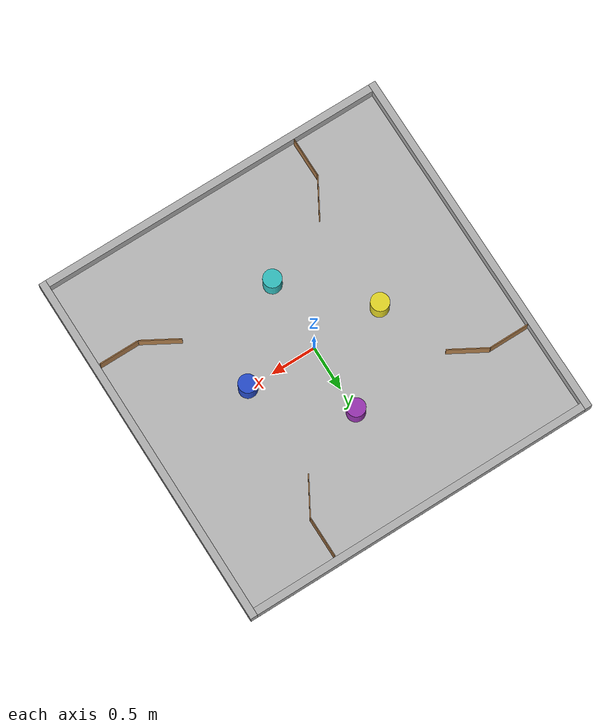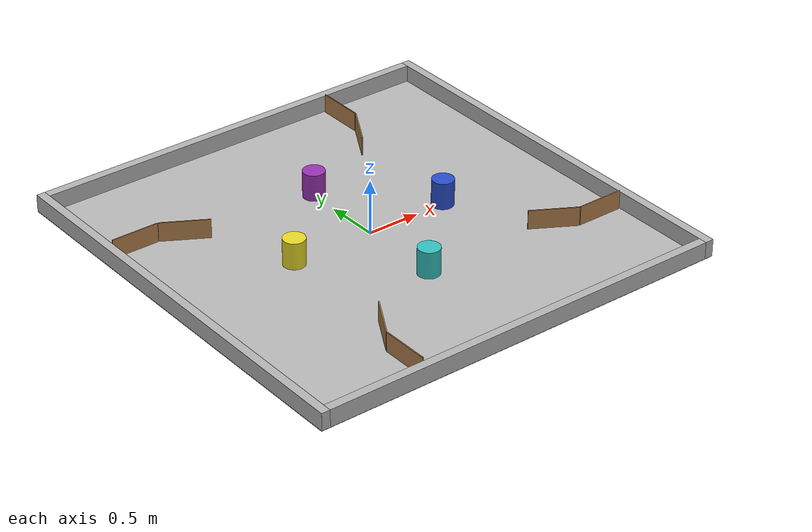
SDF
<?xml version="1.0"?>
<sdf version="1.6">
  <world name="default">

    <include>
      <uri>model://sun</uri>
    </include>

    <scene>
      <shadows>false</shadows>
    </scene>

    <gui fullscreen='0'>
      <camera name='user_camera'>
        <pose frame=''>3.8 -2.5 4.4 0.0 0.85 2.6</pose>
        <view_controller>orbit</view_controller>
        <projection_type>perspective</projection_type>
      </camera>
    </gui>

    <physics type="ode">
      <real_time_update_rate>1000.0</real_time_update_rate>
      <max_step_size>0.001</max_step_size>
      <real_time_factor>1</real_time_factor>
      <ode>
        <solver>
          <type>quick</type>
          <iters>150</iters>
          <precon_iters>0</precon_iters>
          <sor>1.400000</sor>
          <use_dynamic_moi_rescaling>1</use_dynamic_moi_rescaling>
        </solver>
        <constraints>
          <cfm>0.00001</cfm>
          <erp>0.2</erp>
          <contact_max_correcting_vel>2000.000000</contact_max_correcting_vel>
          <contact_surface_layer>0.01000</contact_surface_layer>
        </constraints>
      </ode>
    </physics>

    <include>
      <uri>model://cr5_arena_walls</uri>
    </include>

    <include>
      <uri>model://acs6121</uri>
    </include>

  </world>
</sdf>

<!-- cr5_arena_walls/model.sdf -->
<sdf version='1.6'>
  <model name='cr5_arena_walls'>
    <static>true</static>
    <pose frame=''>0 0 0.08 0 0 0</pose>

    <link name='Right_Wall'>
      <pose frame=''>0 1.96 0 0 0 0</pose>
      <collision name='Right_Wall_Collision'>
        <geometry>
          <box>
            <size>3.84 0.08 0.16</size>
          </box>
        </geometry>
      </collision>
      <visual name='Right_Wall_Visual'>
        <geometry>
          <box>
            <size>3.84 0.08 0.16</size>
          </box>
        </geometry>
        <material>
          <!-- Light Grey -->
          <diffuse>0.7 0.7 0.7 1</diffuse>
          <pbr>
            <metal>
              <metalness>0.0</metalness>
              <roughness>0.9</roughness>
            </metal>
          </pbr>
        </material>
      </visual>
    </link>

    <link name='Back_Wall'>
      <pose frame=''>-1.96 0 0 0 0 0</pose>
      <collision name='Back_Wall_Collision'>
        <geometry>
          <box>
            <size>0.08 4.00 0.16</size>
          </box>
        </geometry>
      </collision>
      <visual name='Back_Wall_Visual'>
        <geometry>
          <box>
            <size>0.08 4.00 0.16</size>
          </box>
        </geometry>
        <material>
          <!-- Light Grey -->
          <diffuse>0.7 0.7 0.7 1</diffuse>
          <pbr>
            <metal>
              <metalness>0.0</metalness>
              <roughness>0.9</roughness>
            </metal>
          </pbr>
        </material>
      </visual>
    </link>

    <link name='Left_Wall'>
      <pose frame=''>0 -1.96 0 0 0 0</pose>
      <collision name='Left_Wall_Collision'>
        <geometry>
          <box>
            <size>3.84 0.08 0.16</size>
          </box>
        </geometry>
      </collision>
      <visual name='Left_Wall_Visual'>
        <geometry>
          <box>
            <size>3.84 0.08 0.16</size>
          </box>
        </geometry>
        <material>
          <!-- Light Grey -->
          <diffuse>0.7 0.7 0.7 1</diffuse>
          <pbr>
            <metal>
              <metalness>0.0</metalness>
              <roughness>0.9</roughness>
            </metal>
          </pbr>
        </material>
      </visual>
    </link>

    <link name='Front_Wall'>
      <pose frame=''>1.96 0 0 0 0 0</pose>
      <collision name='Front_Wall_Collision'>
        <geometry>
          <box>
            <size>0.08 4.00 0.16</size>
          </box>
        </geometry>
      </collision>
      <visual name='Front_Wall_Visual'>
        <geometry>
          <box>
            <size>0.08 4.00 0.16</size>
          </box>
        </geometry>
        <material>
          <!-- Light Grey -->
          <diffuse>0.7 0.7 0.7 1</diffuse>
          <pbr>
            <metal>
              <metalness>0.0</metalness>
              <roughness>0.9</roughness>
            </metal>
          </pbr>
        </material>
      </visual>
    </link>

  </model>
</sdf>

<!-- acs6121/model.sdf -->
<sdf version="1.4">
<model name="acs6121">
  <static>true</static>
    <link name="floor">
      <collision name="collision">
        <geometry>
          <plane>
            <normal>0 0 1</normal>
            <size>4.0 4.0</size>
          </plane>
        </geometry>
        <surface>
          <friction>
            <ode>
              <mu>100</mu>
              <mu2>50</mu2>
            </ode>
          </friction>
        </surface>
      </collision>
      <visual name="visual">
        <cast_shadows>false</cast_shadows>
        <geometry>
          <plane>
            <normal>0 0 1</normal>
            <size>4.0 4.0</size>
          </plane>
        </geometry>
        <material>
          <script>
            <uri>model://acs6121/materials/scripts</uri>
            <uri>model://acs6121/materials/textures</uri>
            <name>acs6121Floor/Image</name>
          </script>
        </material>
      </visual>
    </link>
    <link name='YEL'>
      <pose frame=''>-0.78 0 0.125 0 0 0</pose>
      <collision name='coll'>
        <geometry>
          <cylinder>
            <radius>0.1</radius>
            <length>0.25</length>
          </cylinder>
        </geometry>
        <max_contacts>10</max_contacts>
        <surface>
          <bounce/>
          <friction>
            <ode/>
          </friction>
          <contact>
            <ode/>
          </contact>
        </surface>
      </collision>
      <visual name='vis'>
        <geometry>
          <cylinder>
            <radius>0.1</radius>
            <length>0.25</length>
          </cylinder>
        </geometry>
        <material>
          <script>
            <uri>file://media/materials/scripts/gazebo.material</uri>
            <name>Gazebo/Yellow</name>
          </script>
        </material>
      </visual>
    </link>
    <link name='PRP'>
      <pose frame=''>0 0.78 0.125 0 0 0</pose>
      <collision name='coll'>
        <geometry>
          <cylinder>
            <radius>0.1</radius>
            <length>0.25</length>
          </cylinder>
        </geometry>
        <max_contacts>10</max_contacts>
        <surface>
          <bounce/>
          <friction>
            <ode/>
          </friction>
          <contact>
            <ode/>
          </contact>
        </surface>
      </collision>
      <visual name='vis'>
        <geometry>
          <cylinder>
            <radius>0.1</radius>
            <length>0.25</length>
          </cylinder>
        </geometry>
        <material>
          <script>
            <uri>file://media/materials/scripts/gazebo.material</uri>
            <name>Gazebo/Purple</name>
          </script>
        </material>
      </visual>
    </link>
    <link name='TRQ'>
      <pose frame=''>0 -0.78 0.125 0 0 0</pose>
      <collision name='coll'>
        <geometry>
          <cylinder>
            <radius>0.1</radius>
            <length>0.25</length>
          </cylinder>
        </geometry>
        <max_contacts>10</max_contacts>
        <surface>
          <bounce/>
          <friction>
            <ode/>
          </friction>
          <contact>
            <ode/>
          </contact>
        </surface>
      </collision>
      <visual name='vis'>
        <geometry>
          <cylinder>
            <radius>0.1</radius>
            <length>0.25</length>
          </cylinder>
        </geometry>
        <material>
          <script>
            <uri>file://media/materials/scripts/gazebo.material</uri>
            <name>Gazebo/Turquoise</name>
          </script>
        </material>
      </visual>
    </link>
    <link name='BLU'>
      <pose frame=''>0.78 0 0.125 0 0 0</pose>
      <collision name='coll'>
        <geometry>
          <cylinder>
            <radius>0.1</radius>
            <length>0.25</length>
          </cylinder>
        </geometry>
        <max_contacts>10</max_contacts>
        <surface>
          <bounce/>
          <friction>
            <ode/>
          </friction>
          <contact>
            <ode/>
          </contact>
        </surface>
      </collision>
      <visual name='vis'>
        <geometry>
          <cylinder>
            <radius>0.1</radius>
            <length>0.25</length>
          </cylinder>
        </geometry>
        <material>
          <script>
            <uri>file://media/materials/scripts/gazebo.material</uri>
            <name>Gazebo/Blue</name>
          </script>
        </material>
      </visual>
    </link>

    <link name='wall_asm1'>
      <pose frame=''>-1.49366 0.86067 0.09 0 0 0</pose>
        <collision name='long_col'>
          <pose frame=''>-0.19492 0.10933 0 0 0 0</pose>
          <geometry>
            <box>
              <size>0.44 0.01 0.18</size>
            </box>
          </geometry>
        </collision>
        <visual name='long_vis'>
          <pose frame=''>-0.19492 0.10933 0 0 0 0</pose>
          <geometry>
            <box>
              <size>0.44 0.01 0.18</size>
            </box>
          </geometry>
          <material>
            <script>
              <uri>file://media/materials/scripts/gazebo.material</uri>
              <name>Gazebo/Wood</name>
            </script>
          </material>
        </visual>
        <collision name='short_coll'>
          <pose frame=''>0.22189 0 0 0 0 -0.5236</pose>
          <geometry>
            <box>
              <size>0.44 0.01 0.18</size>
            </box>
          </geometry>
        </collision>
        <visual name='short_vis'>
          <pose frame=''>0.22189 0 0 0 0 -0.5236</pose>
          <geometry>
            <box>
              <size>0.44 0.01 0.18</size>
            </box>
          </geometry>
          <material>
            <script>
              <uri>file://media/materials/scripts/gazebo.material</uri>
              <name>Gazebo/Wood</name>
            </script>
          </material>
        </visual>
    </link>

    <link name='wall_asm2'>
      <pose frame=''>0.86067 1.49366 0.09 0 0 -1.571</pose>
        <collision name='long_col'>
          <pose frame=''>-0.19492 0.10933 0 0 0 0</pose>
          <geometry>
            <box>
              <size>0.44 0.01 0.18</size>
            </box>
          </geometry>
        </collision>
        <visual name='long_vis'>
          <pose frame=''>-0.19492 0.10933 0 0 0 0</pose>
          <geometry>
            <box>
              <size>0.44 0.01 0.18</size>
            </box>
          </geometry>
          <material>
            <script>
              <uri>file://media/materials/scripts/gazebo.material</uri>
              <name>Gazebo/Wood</name>
            </script>
          </material>
        </visual>
        <collision name='short_coll'>
          <pose frame=''>0.22189 0 0 0 0 -0.5236</pose>
          <geometry>
            <box>
              <size>0.44 0.01 0.18</size>
            </box>
          </geometry>
        </collision>
        <visual name='short_vis'>
          <pose frame=''>0.22189 0 0 0 0 -0.5236</pose>
          <geometry>
            <box>
              <size>0.44 0.01 0.18</size>
            </box>
          </geometry>
          <material>
            <script>
              <uri>file://media/materials/scripts/gazebo.material</uri>
              <name>Gazebo/Wood</name>
            </script>
          </material>
        </visual>
    </link>

    <link name='wall_asm3'>
      <pose frame=''>1.49366 -0.86067 0.09 0 0 3.142</pose>
        <collision name='long_col'>
          <pose frame=''>-0.19492 0.10933 0 0 0 0</pose>
          <geometry>
            <box>
              <size>0.44 0.01 0.18</size>
            </box>
          </geometry>
        </collision>
        <visual name='long_vis'>
          <pose frame=''>-0.19492 0.10933 0 0 0 0</pose>
          <geometry>
            <box>
              <size>0.44 0.01 0.18</size>
            </box>
          </geometry>
          <material>
            <script>
              <uri>file://media/materials/scripts/gazebo.material</uri>
              <name>Gazebo/Wood</name>
            </script>
          </material>
        </visual>
        <collision name='short_coll'>
          <pose frame=''>0.22189 0 0 0 0 -0.5236</pose>
          <geometry>
            <box>
              <size>0.44 0.01 0.18</size>
            </box>
          </geometry>
        </collision>
        <visual name='short_vis'>
          <pose frame=''>0.22189 0 0 0 0 -0.5236</pose>
          <geometry>
            <box>
              <size>0.44 0.01 0.18</size>
            </box>
          </geometry>
          <material>
            <script>
              <uri>file://media/materials/scripts/gazebo.material</uri>
              <name>Gazebo/Wood</name>
            </script>
          </material>
        </visual>
    </link>

    <link name='wall_asm4'>
      <pose frame=''>-0.86067 -1.49366 0.09 0 0 1.571</pose>
        <collision name='long_col'>
          <pose frame=''>-0.19492 0.10933 0 0 0 0</pose>
          <geometry>
            <box>
              <size>0.44 0.01 0.18</size>
            </box>
          </geometry>
        </collision>
        <visual name='long_vis'>
          <pose frame=''>-0.19492 0.10933 0 0 0 0</pose>
          <geometry>
            <box>
              <size>0.44 0.01 0.18</size>
            </box>
          </geometry>
          <material>
            <script>
              <uri>file://media/materials/scripts/gazebo.material</uri>
              <name>Gazebo/Wood</name>
            </script>
          </material>
        </visual>
        <collision name='short_coll'>
          <pose frame=''>0.22189 0 0 0 0 -0.5236</pose>
          <geometry>
            <box>
              <size>0.44 0.01 0.18</size>
            </box>
          </geometry>
        </collision>
        <visual name='short_vis'>
          <pose frame=''>0.22189 0 0 0 0 -0.5236</pose>
          <geometry>
            <box>
              <size>0.44 0.01 0.18</size>
            </box>
          </geometry>
          <material>
            <script>
              <uri>file://media/materials/scripts/gazebo.material</uri>
              <name>Gazebo/Wood</name>
            </script>
          </material>
        </visual>
    </link>

  </model>
</sdf>
